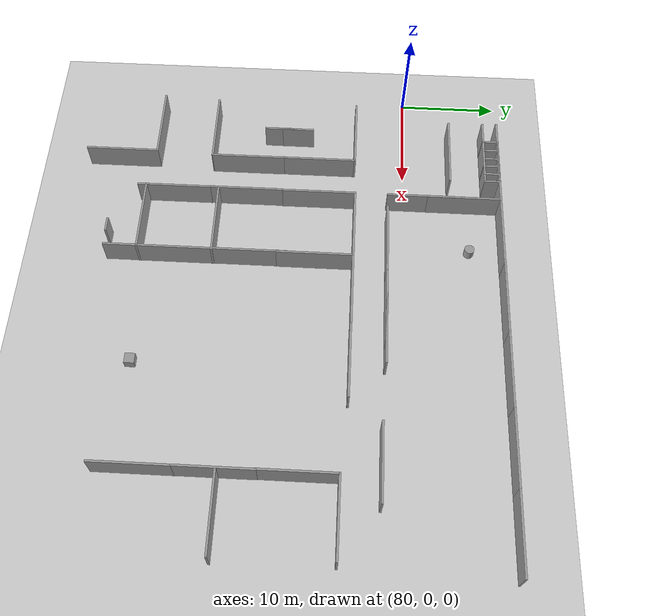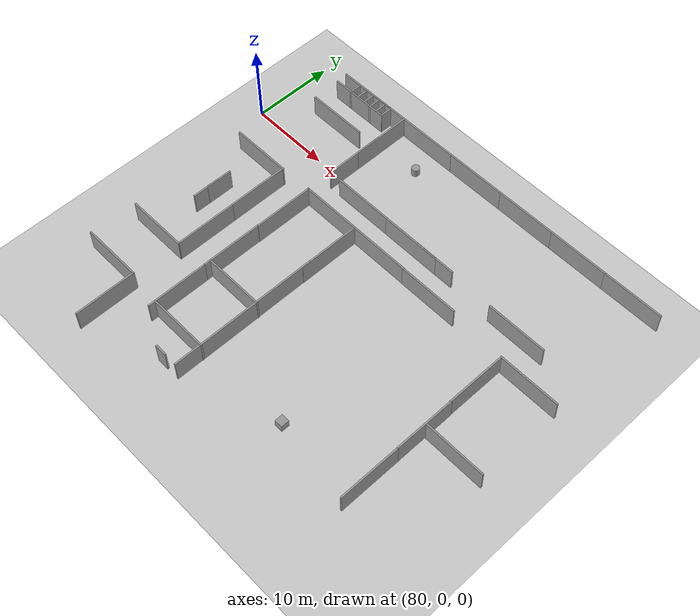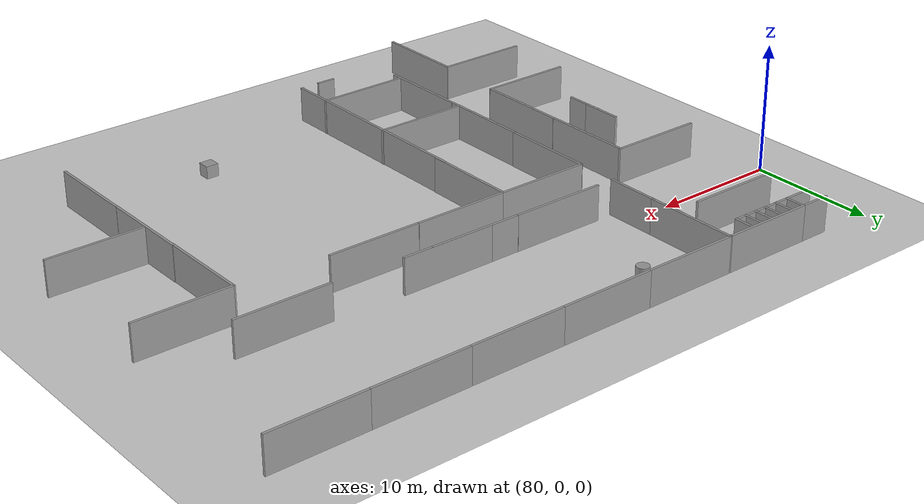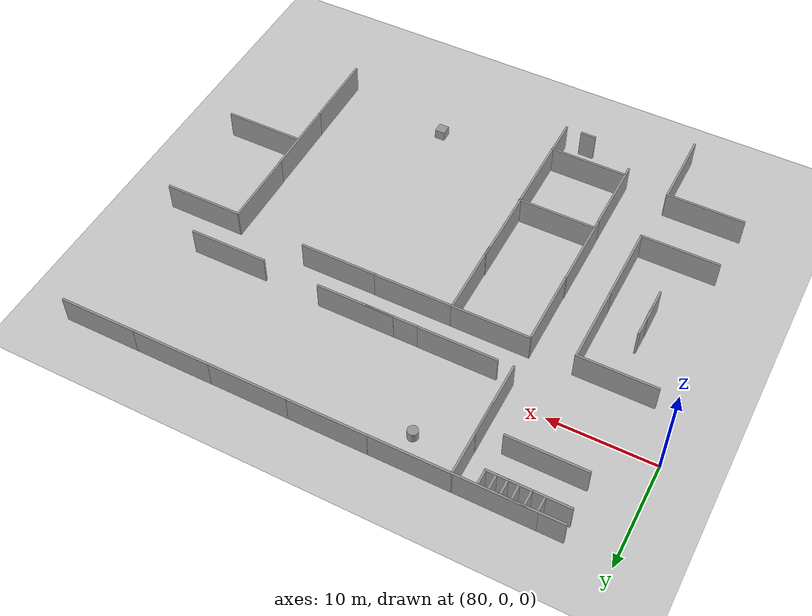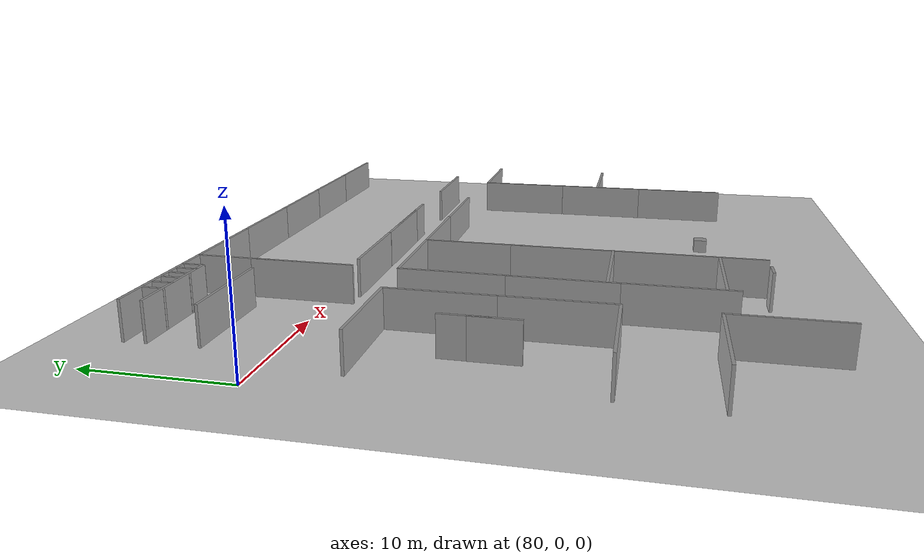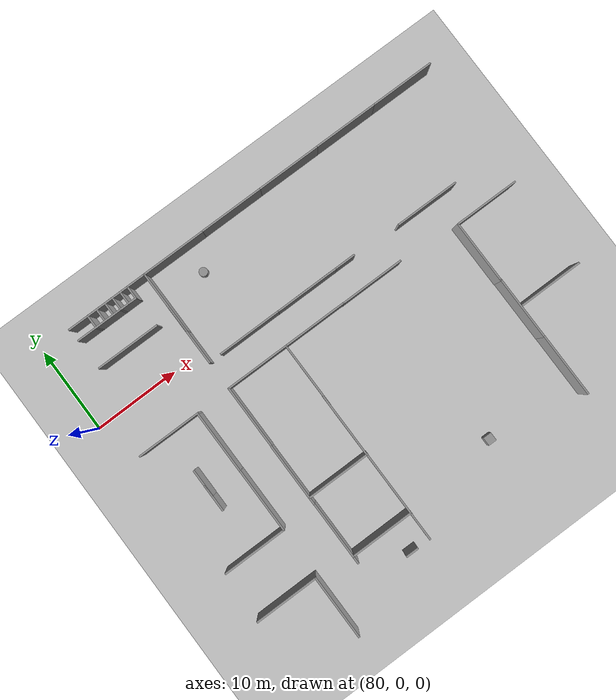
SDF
<sdf version="1.7">
 <world name="default">
  <model name="ground_plane">
   <static>1</static>
   <link name="link">
    <collision name="collision">
     <geometry><plane><normal>0 0 1</normal><size>100 100</size></plane></geometry>
     <surface>
      <contact><collide_bitmask>65535</collide_bitmask></contact>
      <friction><ode><mu>100</mu><mu2>50</mu2></ode></friction>
     </surface>
    </collision>
    <visual name="visual">
     <cast_shadows>0</cast_shadows>
     <geometry><plane><normal>0 0 1</normal><size>100 100</size></plane></geometry>
     <material>
      <script><uri>file://media/materials/scripts/gazebo.material</uri><name>Gazebo/Grey</name></script>
     </material>
    </visual>
   </link>
  </model>
  <model name="grey_wall_clone_1_clone_2_clone_clone_clone_clone_clone_clone_clone_clone_clone_3_clone_1">
   <static>1</static>
   <link name="link">
    <pose>0 0 1.4 0 -0 0</pose>
    <collision name="collision"><geometry><box><size>7.5 0.2 2.8</size></box></geometry></collision>
    <visual name="visual">
     <cast_shadows>0</cast_shadows>
     <geometry><box><size>7.5 0.2 2.8</size></box></geometry>
     <material>
      <script>
       <uri>model://grey_wall/materials/scripts</uri>
       <uri>model://grey_wall/materials/textures</uri>
       <name>vrc/grey_wall</name>
      </script>
     </material>
    </visual>
   </link>
   <pose>86.0719 -5.1517 0 0 -0 0</pose>
  </model>
  <model name="grey_wall_clone_2_clone_clone_clone_1_clone_clone_0_clone_1_clone_clone_clone_1_clone_0">
   <static>1</static>
   <link name="link">
    <pose>0 0 1.4 0 -0 0</pose>
    <collision name="collision"><geometry><box><size>7.5 0.2 2.8</size></box></geometry></collision>
    <visual name="visual">
     <cast_shadows>0</cast_shadows>
     <geometry><box><size>7.5 0.2 2.8</size></box></geometry>
     <material>
      <script>
       <uri>model://grey_wall/materials/scripts</uri>
       <uri>model://grey_wall/materials/textures</uri>
       <name>vrc/grey_wall</name>
      </script>
     </material>
    </visual>
   </link>
   <pose>89.7157 -8.80789 0 0 0 -1.5708</pose>
  </model>
  <model name="grey_wall_clone_2_clone_clone_clone_1_clone_clone_0_clone_1_clone_clone_clone_1_clone_1">
   <static>1</static>
   <link name="link">
    <pose>0 0 1.4 0 -0 0</pose>
    <collision name="collision"><geometry><box><size>7.5 0.2 2.8</size></box></geometry></collision>
    <visual name="visual">
     <cast_shadows>0</cast_shadows>
     <geometry><box><size>7.5 0.2 2.8</size></box></geometry>
     <material>
      <script>
       <uri>model://grey_wall/materials/scripts</uri>
       <uri>model://grey_wall/materials/textures</uri>
       <name>vrc/grey_wall</name>
      </script>
     </material>
    </visual>
   </link>
   <pose>89.7299 -16.2551 0 0 0 -1.5708</pose>
  </model>
  <model name="grey_wall_clone_1_clone_2_clone_clone_clone_clone_clone_clone_clone_clone_clone_3_clone_0_clone">
   <static>1</static>
   <link name="link">
    <pose>0 0 1.4 0 -0 0</pose>
    <collision name="collision"><geometry><box><size>7.5 0.2 2.8</size></box></geometry></collision>
    <visual name="visual">
     <cast_shadows>0</cast_shadows>
     <geometry><box><size>7.5 0.2 2.8</size></box></geometry>
     <material>
      <script>
       <uri>model://grey_wall/materials/scripts</uri>
       <uri>model://grey_wall/materials/textures</uri>
       <name>vrc/grey_wall</name>
      </script>
     </material>
    </visual>
   </link>
   <pose>86.0487 -19.9992 0 0 -0 0</pose>
  </model>
  <model name="fixed_half_clone_16_clone_clone_clone_0_clone_3">
   <link name="link">
    <pose>0 0 1.4 0 -0 0</pose>
    <inertial>
     <mass>1</mass>
     <inertia><ixx>1</ixx><ixy>0</ixy><ixz>0</ixz><iyy>1</iyy><iyz>0</iyz><izz>1</izz></inertia>
    </inertial>
    <visual name="visual">
     <cast_shadows>0</cast_shadows>
     <geometry><box><size>3.3 0.2 2.8</size></box></geometry>
     <material>
      <script>
       <uri>model://grey_wall/materials/scripts</uri>
       <uri>model://grey_wall/materials/textures</uri>
       <name>vrc/grey_wall</name>
      </script>
      <shader type="pixel"><normal_map>__default__</normal_map></shader>
      <ambient>1 1 1 1</ambient>
      <diffuse>1 1 1 1</diffuse>
      <specular>0 0 0 1</specular>
      <emissive>0 0 0 1</emissive>
     </material>
    </visual>
    <collision name="collision">
     <geometry><box><size>3.3 0.2 2.8</size></box></geometry>
     <surface>
      <friction>
       <ode><mu>1</mu><mu2>1</mu2><fdir1>0 0 0</fdir1><slip1>0</slip1><slip2>0</slip2></ode>
       <torsional>
        <coefficient>1</coefficient>
        <patch_radius>0</patch_radius>
        <surface_radius>0</surface_radius>
        <use_patch_radius>1</use_patch_radius>
        <ode><slip>0</slip></ode>
       </torsional>
      </friction>
      <bounce><restitution_coefficient>0</restitution_coefficient><threshold>1e+06</threshold></bounce>
      <contact>
       <collide_without_contact>0</collide_without_contact>
       <collide_without_contact_bitmask>1</collide_without_contact_bitmask>
       <collide_bitmask>1</collide_bitmask>
       <ode>
        <soft_cfm>0</soft_cfm>
        <soft_erp>0.2</soft_erp>
        <kp>1e+13</kp>
        <kd>1</kd>
        <max_vel>0.01</max_vel>
        <min_depth>0</min_depth>
       </ode>
       <bullet>
        <split_impulse>1</split_impulse>
        <split_impulse_penetration_threshold>-0.01</split_impulse_penetration_threshold>
        <soft_cfm>0</soft_cfm>
        <soft_erp>0.2</soft_erp>
        <kp>1e+13</kp>
        <kd>1</kd>
       </bullet>
      </contact>
     </surface>
    </collision>
   </link>
   <static>1</static>
   <pose>85.9377 -11.2515 0 0 0 -1.5708</pose>
  </model>
  <model name="fixed_half_clone_16_clone_clone_clone_0_clone_4">
   <link name="link">
    <pose>0 0 1.4 0 -0 0</pose>
    <inertial>
     <mass>1</mass>
     <inertia><ixx>1</ixx><ixy>0</ixy><ixz>0</ixz><iyy>1</iyy><iyz>0</iyz><izz>1</izz></inertia>
    </inertial>
    <visual name="visual">
     <cast_shadows>0</cast_shadows>
     <geometry><box><size>3.3 0.2 2.8</size></box></geometry>
     <material>
      <script>
       <uri>model://grey_wall/materials/scripts</uri>
       <uri>model://grey_wall/materials/textures</uri>
       <name>vrc/grey_wall</name>
      </script>
      <shader type="pixel"><normal_map>__default__</normal_map></shader>
      <ambient>1 1 1 1</ambient>
      <diffuse>1 1 1 1</diffuse>
      <specular>0 0 0 1</specular>
      <emissive>0 0 0 1</emissive>
     </material>
    </visual>
    <collision name="collision">
     <geometry><box><size>3.3 0.2 2.8</size></box></geometry>
     <surface>
      <friction>
       <ode><mu>1</mu><mu2>1</mu2><fdir1>0 0 0</fdir1><slip1>0</slip1><slip2>0</slip2></ode>
       <torsional>
        <coefficient>1</coefficient>
        <patch_radius>0</patch_radius>
        <surface_radius>0</surface_radius>
        <use_patch_radius>1</use_patch_radius>
        <ode><slip>0</slip></ode>
       </torsional>
      </friction>
      <bounce><restitution_coefficient>0</restitution_coefficient><threshold>1e+06</threshold></bounce>
      <contact>
       <collide_without_contact>0</collide_without_contact>
       <collide_without_contact_bitmask>1</collide_without_contact_bitmask>
       <collide_bitmask>1</collide_bitmask>
       <ode>
        <soft_cfm>0</soft_cfm>
        <soft_erp>0.2</soft_erp>
        <kp>1e+13</kp>
        <kd>1</kd>
        <max_vel>0.01</max_vel>
        <min_depth>0</min_depth>
       </ode>
       <bullet>
        <split_impulse>1</split_impulse>
        <split_impulse_penetration_threshold>-0.01</split_impulse_penetration_threshold>
        <soft_cfm>0</soft_cfm>
        <soft_erp>0.2</soft_erp>
        <kp>1e+13</kp>
        <kd>1</kd>
       </bullet>
      </contact>
     </surface>
    </collision>
   </link>
   <static>1</static>
   <pose>85.9227 -13.0879 0 0 0 -1.5708</pose>
  </model>
  <model name="grey_wall_clone_1_clone_2_clone_clone_clone_clone_clone_clone_clone_clone_clone_3_clone_0_clone_1_clone_1">
   <static>1</static>
   <link name="link">
    <pose>0 0 1.4 0 -0 0</pose>
    <collision name="collision"><geometry><box><size>7.5 0.2 2.8</size></box></geometry></collision>
    <visual name="visual">
     <cast_shadows>0</cast_shadows>
     <geometry><box><size>7.5 0.2 2.8</size></box></geometry>
     <material>
      <script>
       <uri>model://grey_wall/materials/scripts</uri>
       <uri>model://grey_wall/materials/textures</uri>
       <name>vrc/grey_wall</name>
      </script>
     </material>
    </visual>
   </link>
   <pose>85.7534 -25.8356 0 0 -0 0</pose>
  </model>
  <model name="grey_wall_clone_2_clone_clone_clone_1_clone_clone_0_clone_1_clone_clone_clone_1_clone_1_clone">
   <static>1</static>
   <link name="link">
    <pose>0 0 1.4 0 -0 0</pose>
    <collision name="collision"><geometry><box><size>7.5 0.2 2.8</size></box></geometry></collision>
    <visual name="visual">
     <cast_shadows>0</cast_shadows>
     <geometry><box><size>7.5 0.2 2.8</size></box></geometry>
     <material>
      <script>
       <uri>model://grey_wall/materials/scripts</uri>
       <uri>model://grey_wall/materials/textures</uri>
       <name>vrc/grey_wall</name>
      </script>
     </material>
    </visual>
   </link>
   <pose>89.4363 -29.4887 0 0 0 -1.5708</pose>
  </model>
  <model name="grey_wall_clone_2_clone_clone_clone_1_clone_clone_0_clone_1_clone_clone_clone_1_clone_0_clone_1">
   <static>1</static>
   <link name="link">
    <pose>0 0 1.4 0 -0 0</pose>
    <collision name="collision"><geometry><box><size>7.5 0.2 2.8</size></box></geometry></collision>
    <visual name="visual">
     <cast_shadows>0</cast_shadows>
     <geometry><box><size>7.5 0.2 2.8</size></box></geometry>
     <material>
      <script>
       <uri>model://grey_wall/materials/scripts</uri>
       <uri>model://grey_wall/materials/textures</uri>
       <name>vrc/grey_wall</name>
      </script>
     </material>
    </visual>
   </link>
   <pose>93.8471 6.09525 0 0 0 -1.5708</pose>
  </model>
  <model name="grey_wall_clone_1_clone_2_clone_clone_clone_clone_clone_clone_clone_3_clone_0_clone">
   <static>1</static>
   <link name="link">
    <pose>0 0 1.4 0 -0 0</pose>
    <collision name="collision"><geometry><box><size>7.5 0.2 2.8</size></box></geometry></collision>
    <visual name="visual">
     <cast_shadows>0</cast_shadows>
     <geometry><box><size>7.5 0.2 2.8</size></box></geometry>
     <material>
      <script>
       <uri>model://grey_wall/materials/scripts</uri>
       <uri>model://grey_wall/materials/textures</uri>
       <name>vrc/grey_wall</name>
      </script>
     </material>
    </visual>
   </link>
   <pose>87.888 9.74014 0 0 -0 0</pose>
  </model>
  <model name="grey_wall_clone_1_clone_2_clone_clone_clone_clone_clone_clone_clone_3_clone_0_clone_0">
   <static>1</static>
   <link name="link">
    <pose>0 0 1.4 0 -0 0</pose>
    <collision name="collision"><geometry><box><size>7.5 0.2 2.8</size></box></geometry></collision>
    <visual name="visual">
     <cast_shadows>0</cast_shadows>
     <geometry><box><size>7.5 0.2 2.8</size></box></geometry>
     <material>
      <script>
       <uri>model://grey_wall/materials/scripts</uri>
       <uri>model://grey_wall/materials/textures</uri>
       <name>vrc/grey_wall</name>
      </script>
     </material>
    </visual>
   </link>
   <pose>90.2192 9.74402 0 0 -0 0</pose>
  </model>
  <model name="grey_wall_clone_2_clone_clone_clone_1_clone_clone_0_clone_1_clone_clone_clone_1_clone_0_clone_1_clone">
   <static>1</static>
   <link name="link">
    <pose>0 0 1.4 0 -0 0</pose>
    <collision name="collision"><geometry><box><size>7.5 0.2 2.8</size></box></geometry></collision>
    <visual name="visual">
     <cast_shadows>0</cast_shadows>
     <geometry><box><size>7.5 0.2 2.8</size></box></geometry>
     <material>
      <script>
       <uri>model://grey_wall/materials/scripts</uri>
       <uri>model://grey_wall/materials/textures</uri>
       <name>vrc/grey_wall</name>
      </script>
     </material>
    </visual>
   </link>
   <pose>93.8338 1.98446 0 0 0 -1.5708</pose>
  </model>
  <model name="grey_wall_clone_1_clone_2_clone_clone_clone_clone_clone_clone_clone_clone_clone_3_clone_1_clone">
   <static>1</static>
   <link name="link">
    <pose>0 0 1.4 0 -0 0</pose>
    <collision name="collision"><geometry><box><size>7.5 0.2 2.8</size></box></geometry></collision>
    <visual name="visual">
     <cast_shadows>0</cast_shadows>
     <geometry><box><size>7.5 0.2 2.8</size></box></geometry>
     <material>
      <script>
       <uri>model://grey_wall/materials/scripts</uri>
       <uri>model://grey_wall/materials/textures</uri>
       <name>vrc/grey_wall</name>
      </script>
     </material>
    </visual>
   </link>
   <pose>88.0341 4.67665 0 0 -0 0</pose>
  </model>
  <model name="grey_wall_clone_1_clone_2_clone_clone_clone_clone_clone_clone_clone_clone_clone_3_clone_1_clone_0">
   <static>1</static>
   <link name="link">
    <pose>0 0 1.4 0 -0 0</pose>
    <collision name="collision"><geometry><box><size>7.5 0.2 2.8</size></box></geometry></collision>
    <visual name="visual">
     <cast_shadows>0</cast_shadows>
     <geometry><box><size>7.5 0.2 2.8</size></box></geometry>
     <material>
      <script>
       <uri>model://grey_wall/materials/scripts</uri>
       <uri>model://grey_wall/materials/textures</uri>
       <name>vrc/grey_wall</name>
      </script>
     </material>
    </visual>
   </link>
   <pose>87.9911 8.26196 0 0 -0 0</pose>
  </model>
  <model name="half_wall_clone_0_clone_clone_clone_9_clone_3">
   <link name="link">
    <pose>0 0 1.4 0 -0 0</pose>
    <inertial>
     <mass>1</mass>
     <inertia><ixx>1</ixx><ixy>0</ixy><ixz>0</ixz><iyy>1</iyy><iyz>0</iyz><izz>1</izz></inertia>
    </inertial>
    <visual name="visual">
     <cast_shadows>0</cast_shadows>
     <geometry><box><size>1.5 0.2 2.8</size></box></geometry>
     <material>
      <script>
       <uri>model://grey_wall/materials/scripts</uri>
       <uri>model://grey_wall/materials/textures</uri>
       <name>vrc/grey_wall</name>
      </script>
      <shader type="pixel"><normal_map>__default__</normal_map></shader>
      <ambient>1 1 1 1</ambient>
      <diffuse>1 1 1 1</diffuse>
      <specular>0 0 0 1</specular>
      <emissive>0 0 0 1</emissive>
     </material>
    </visual>
    <collision name="collision">
     <geometry><box><size>1.5 0.2 2.8</size></box></geometry>
     <surface>
      <friction>
       <ode><mu>1</mu><mu2>1</mu2><fdir1>0 0 0</fdir1><slip1>0</slip1><slip2>0</slip2></ode>
       <torsional>
        <coefficient>1</coefficient>
        <patch_radius>0</patch_radius>
        <surface_radius>0</surface_radius>
        <use_patch_radius>1</use_patch_radius>
        <ode><slip>0</slip></ode>
       </torsional>
      </friction>
      <bounce><restitution_coefficient>0</restitution_coefficient><threshold>1e+06</threshold></bounce>
      <contact>
       <collide_without_contact>0</collide_without_contact>
       <collide_without_contact_bitmask>1</collide_without_contact_bitmask>
       <collide_bitmask>1</collide_bitmask>
       <ode>
        <soft_cfm>0</soft_cfm>
        <soft_erp>0.2</soft_erp>
        <kp>1e+13</kp>
        <kd>1</kd>
        <max_vel>0.01</max_vel>
        <min_depth>0</min_depth>
       </ode>
       <bullet>
        <split_impulse>1</split_impulse>
        <split_impulse_penetration_threshold>-0.01</split_impulse_penetration_threshold>
        <soft_cfm>0</soft_cfm>
        <soft_erp>0.2</soft_erp>
        <kp>1e+13</kp>
        <kd>1</kd>
       </bullet>
      </contact>
     </surface>
    </collision>
   </link>
   <static>1</static>
   <pose>90.7353 8.94878 0 0 0 -1.5708</pose>
  </model>
  <model name="half_wall_clone_0_clone_clone_clone_9_clone_4">
   <link name="link">
    <pose>0 0 1.4 0 -0 0</pose>
    <inertial>
     <mass>1</mass>
     <inertia><ixx>1</ixx><ixy>0</ixy><ixz>0</ixz><iyy>1</iyy><iyz>0</iyz><izz>1</izz></inertia>
    </inertial>
    <visual name="visual">
     <cast_shadows>0</cast_shadows>
     <geometry><box><size>1.5 0.2 2.8</size></box></geometry>
     <material>
      <script>
       <uri>model://grey_wall/materials/scripts</uri>
       <uri>model://grey_wall/materials/textures</uri>
       <name>vrc/grey_wall</name>
      </script>
      <shader type="pixel"><normal_map>__default__</normal_map></shader>
      <ambient>1 1 1 1</ambient>
      <diffuse>1 1 1 1</diffuse>
      <specular>0 0 0 1</specular>
      <emissive>0 0 0 1</emissive>
     </material>
    </visual>
    <collision name="collision">
     <geometry><box><size>1.5 0.2 2.8</size></box></geometry>
     <surface>
      <friction>
       <ode><mu>1</mu><mu2>1</mu2><fdir1>0 0 0</fdir1><slip1>0</slip1><slip2>0</slip2></ode>
       <torsional>
        <coefficient>1</coefficient>
        <patch_radius>0</patch_radius>
        <surface_radius>0</surface_radius>
        <use_patch_radius>1</use_patch_radius>
        <ode><slip>0</slip></ode>
       </torsional>
      </friction>
      <bounce><restitution_coefficient>0</restitution_coefficient><threshold>1e+06</threshold></bounce>
      <contact>
       <collide_without_contact>0</collide_without_contact>
       <collide_without_contact_bitmask>1</collide_without_contact_bitmask>
       <collide_bitmask>1</collide_bitmask>
       <ode>
        <soft_cfm>0</soft_cfm>
        <soft_erp>0.2</soft_erp>
        <kp>1e+13</kp>
        <kd>1</kd>
        <max_vel>0.01</max_vel>
        <min_depth>0</min_depth>
       </ode>
       <bullet>
        <split_impulse>1</split_impulse>
        <split_impulse_penetration_threshold>-0.01</split_impulse_penetration_threshold>
        <soft_cfm>0</soft_cfm>
        <soft_erp>0.2</soft_erp>
        <kp>1e+13</kp>
        <kd>1</kd>
       </bullet>
      </contact>
     </surface>
    </collision>
   </link>
   <static>1</static>
   <pose>89.7411 8.90187 0 0 0 -1.5708</pose>
  </model>
  <model name="half_wall_clone_0_clone_clone_clone_9_clone_5">
   <link name="link">
    <pose>0 0 1.4 0 -0 0</pose>
    <inertial>
     <mass>1</mass>
     <inertia><ixx>1</ixx><ixy>0</ixy><ixz>0</ixz><iyy>1</iyy><iyz>0</iyz><izz>1</izz></inertia>
    </inertial>
    <visual name="visual">
     <cast_shadows>0</cast_shadows>
     <geometry><box><size>1.5 0.2 2.8</size></box></geometry>
     <material>
      <script>
       <uri>model://grey_wall/materials/scripts</uri>
       <uri>model://grey_wall/materials/textures</uri>
       <name>vrc/grey_wall</name>
      </script>
      <shader type="pixel"><normal_map>__default__</normal_map></shader>
      <ambient>1 1 1 1</ambient>
      <diffuse>1 1 1 1</diffuse>
      <specular>0 0 0 1</specular>
      <emissive>0 0 0 1</emissive>
     </material>
    </visual>
    <collision name="collision">
     <geometry><box><size>1.5 0.2 2.8</size></box></geometry>
     <surface>
      <friction>
       <ode><mu>1</mu><mu2>1</mu2><fdir1>0 0 0</fdir1><slip1>0</slip1><slip2>0</slip2></ode>
       <torsional>
        <coefficient>1</coefficient>
        <patch_radius>0</patch_radius>
        <surface_radius>0</surface_radius>
        <use_patch_radius>1</use_patch_radius>
        <ode><slip>0</slip></ode>
       </torsional>
      </friction>
      <bounce><restitution_coefficient>0</restitution_coefficient><threshold>1e+06</threshold></bounce>
      <contact>
       <collide_without_contact>0</collide_without_contact>
       <collide_without_contact_bitmask>1</collide_without_contact_bitmask>
       <collide_bitmask>1</collide_bitmask>
       <ode>
        <soft_cfm>0</soft_cfm>
        <soft_erp>0.2</soft_erp>
        <kp>1e+13</kp>
        <kd>1</kd>
        <max_vel>0.01</max_vel>
        <min_depth>0</min_depth>
       </ode>
       <bullet>
        <split_impulse>1</split_impulse>
        <split_impulse_penetration_threshold>-0.01</split_impulse_penetration_threshold>
        <soft_cfm>0</soft_cfm>
        <soft_erp>0.2</soft_erp>
        <kp>1e+13</kp>
        <kd>1</kd>
       </bullet>
      </contact>
     </surface>
    </collision>
   </link>
   <static>1</static>
   <pose>88.7925 8.92844 0 0 0 -1.5708</pose>
  </model>
  <model name="half_wall_clone_0_clone_clone_clone_9_clone_6">
   <link name="link">
    <pose>0 0 1.4 0 -0 0</pose>
    <inertial>
     <mass>1</mass>
     <inertia><ixx>1</ixx><ixy>0</ixy><ixz>0</ixz><iyy>1</iyy><iyz>0</iyz><izz>1</izz></inertia>
    </inertial>
    <visual name="visual">
     <cast_shadows>0</cast_shadows>
     <geometry><box><size>1.5 0.2 2.8</size></box></geometry>
     <material>
      <script>
       <uri>model://grey_wall/materials/scripts</uri>
       <uri>model://grey_wall/materials/textures</uri>
       <name>vrc/grey_wall</name>
      </script>
      <shader type="pixel"><normal_map>__default__</normal_map></shader>
      <ambient>1 1 1 1</ambient>
      <diffuse>1 1 1 1</diffuse>
      <specular>0 0 0 1</specular>
      <emissive>0 0 0 1</emissive>
     </material>
    </visual>
    <collision name="collision">
     <geometry><box><size>1.5 0.2 2.8</size></box></geometry>
     <surface>
      <friction>
       <ode><mu>1</mu><mu2>1</mu2><fdir1>0 0 0</fdir1><slip1>0</slip1><slip2>0</slip2></ode>
       <torsional>
        <coefficient>1</coefficient>
        <patch_radius>0</patch_radius>
        <surface_radius>0</surface_radius>
        <use_patch_radius>1</use_patch_radius>
        <ode><slip>0</slip></ode>
       </torsional>
      </friction>
      <bounce><restitution_coefficient>0</restitution_coefficient><threshold>1e+06</threshold></bounce>
      <contact>
       <collide_without_contact>0</collide_without_contact>
       <collide_without_contact_bitmask>1</collide_without_contact_bitmask>
       <collide_bitmask>1</collide_bitmask>
       <ode>
        <soft_cfm>0</soft_cfm>
        <soft_erp>0.2</soft_erp>
        <kp>1e+13</kp>
        <kd>1</kd>
        <max_vel>0.01</max_vel>
        <min_depth>0</min_depth>
       </ode>
       <bullet>
        <split_impulse>1</split_impulse>
        <split_impulse_penetration_threshold>-0.01</split_impulse_penetration_threshold>
        <soft_cfm>0</soft_cfm>
        <soft_erp>0.2</soft_erp>
        <kp>1e+13</kp>
        <kd>1</kd>
       </bullet>
      </contact>
     </surface>
    </collision>
   </link>
   <static>1</static>
   <pose>87.7152 8.92858 0 0 0 -1.5708</pose>
  </model>
  <model name="half_wall_clone_0_clone_clone_clone_9_clone_7">
   <link name="link">
    <pose>0 0 1.4 0 -0 0</pose>
    <inertial>
     <mass>1</mass>
     <inertia><ixx>1</ixx><ixy>0</ixy><ixz>0</ixz><iyy>1</iyy><iyz>0</iyz><izz>1</izz></inertia>
    </inertial>
    <visual name="visual">
     <cast_shadows>0</cast_shadows>
     <geometry><box><size>1.5 0.2 2.8</size></box></geometry>
     <material>
      <script>
       <uri>model://grey_wall/materials/scripts</uri>
       <uri>model://grey_wall/materials/textures</uri>
       <name>vrc/grey_wall</name>
      </script>
      <shader type="pixel"><normal_map>__default__</normal_map></shader>
      <ambient>1 1 1 1</ambient>
      <diffuse>1 1 1 1</diffuse>
      <specular>0 0 0 1</specular>
      <emissive>0 0 0 1</emissive>
     </material>
    </visual>
    <collision name="collision">
     <geometry><box><size>1.5 0.2 2.8</size></box></geometry>
     <surface>
      <friction>
       <ode><mu>1</mu><mu2>1</mu2><fdir1>0 0 0</fdir1><slip1>0</slip1><slip2>0</slip2></ode>
       <torsional>
        <coefficient>1</coefficient>
        <patch_radius>0</patch_radius>
        <surface_radius>0</surface_radius>
        <use_patch_radius>1</use_patch_radius>
        <ode><slip>0</slip></ode>
       </torsional>
      </friction>
      <bounce><restitution_coefficient>0</restitution_coefficient><threshold>1e+06</threshold></bounce>
      <contact>
       <collide_without_contact>0</collide_without_contact>
       <collide_without_contact_bitmask>1</collide_without_contact_bitmask>
       <collide_bitmask>1</collide_bitmask>
       <ode>
        <soft_cfm>0</soft_cfm>
        <soft_erp>0.2</soft_erp>
        <kp>1e+13</kp>
        <kd>1</kd>
        <max_vel>0.01</max_vel>
        <min_depth>0</min_depth>
       </ode>
       <bullet>
        <split_impulse>1</split_impulse>
        <split_impulse_penetration_threshold>-0.01</split_impulse_penetration_threshold>
        <soft_cfm>0</soft_cfm>
        <soft_erp>0.2</soft_erp>
        <kp>1e+13</kp>
        <kd>1</kd>
       </bullet>
      </contact>
     </surface>
    </collision>
   </link>
   <static>1</static>
   <pose>86.5825 8.90991 0 0 0 -1.5708</pose>
  </model>
  <model name="half_wall_clone_0_clone_clone_clone_9_clone_9">
   <link name="link">
    <pose>0 0 1.4 0 -0 0</pose>
    <inertial>
     <mass>1</mass>
     <inertia><ixx>1</ixx><ixy>0</ixy><ixz>0</ixz><iyy>1</iyy><iyz>0</iyz><izz>1</izz></inertia>
    </inertial>
    <visual name="visual">
     <cast_shadows>0</cast_shadows>
     <geometry><box><size>1.5 0.2 2.8</size></box></geometry>
     <material>
      <script>
       <uri>model://grey_wall/materials/scripts</uri>
       <uri>model://grey_wall/materials/textures</uri>
       <name>vrc/grey_wall</name>
      </script>
      <shader type="pixel"><normal_map>__default__</normal_map></shader>
      <ambient>1 1 1 1</ambient>
      <diffuse>1 1 1 1</diffuse>
      <specular>0 0 0 1</specular>
      <emissive>0 0 0 1</emissive>
     </material>
    </visual>
    <collision name="collision">
     <geometry><box><size>1.5 0.2 2.8</size></box></geometry>
     <surface>
      <friction>
       <ode><mu>1</mu><mu2>1</mu2><fdir1>0 0 0</fdir1><slip1>0</slip1><slip2>0</slip2></ode>
       <torsional>
        <coefficient>1</coefficient>
        <patch_radius>0</patch_radius>
        <surface_radius>0</surface_radius>
        <use_patch_radius>1</use_patch_radius>
        <ode><slip>0</slip></ode>
       </torsional>
      </friction>
      <bounce><restitution_coefficient>0</restitution_coefficient><threshold>1e+06</threshold></bounce>
      <contact>
       <collide_without_contact>0</collide_without_contact>
       <collide_without_contact_bitmask>1</collide_without_contact_bitmask>
       <collide_bitmask>1</collide_bitmask>
       <ode>
        <soft_cfm>0</soft_cfm>
        <soft_erp>0.2</soft_erp>
        <kp>1e+13</kp>
        <kd>1</kd>
        <max_vel>0.01</max_vel>
        <min_depth>0</min_depth>
       </ode>
       <bullet>
        <split_impulse>1</split_impulse>
        <split_impulse_penetration_threshold>-0.01</split_impulse_penetration_threshold>
        <soft_cfm>0</soft_cfm>
        <soft_erp>0.2</soft_erp>
        <kp>1e+13</kp>
        <kd>1</kd>
       </bullet>
      </contact>
     </surface>
    </collision>
   </link>
   <static>1</static>
   <pose>91.6662 8.92306 0 0 0 -1.5708</pose>
  </model>
  <model name="grey_wall_clone_2_clone_clone_clone_1_clone_clone_0_clone_1_clone_clone_clone_1_clone_0_clone_2">
   <static>1</static>
   <link name="link">
    <pose>0 0 1.4 0 -0 0</pose>
    <collision name="collision"><geometry><box><size>7.5 0.2 2.8</size></box></geometry></collision>
    <visual name="visual">
     <cast_shadows>0</cast_shadows>
     <geometry><box><size>7.5 0.2 2.8</size></box></geometry>
     <material>
      <script>
       <uri>model://grey_wall/materials/scripts</uri>
       <uri>model://grey_wall/materials/textures</uri>
       <name>vrc/grey_wall</name>
      </script>
     </material>
    </visual>
   </link>
   <pose>93.8207 -8.67642 0 0 0 -1.5708</pose>
  </model>
  <model name="grey_wall_clone_2_clone_clone_clone_1_clone_clone_0_clone_1_clone_clone_clone_1_clone_0_clone_2_clone">
   <static>1</static>
   <link name="link">
    <pose>0 0 1.4 0 -0 0</pose>
    <collision name="collision"><geometry><box><size>7.5 0.2 2.8</size></box></geometry></collision>
    <visual name="visual">
     <cast_shadows>0</cast_shadows>
     <geometry><box><size>7.5 0.2 2.8</size></box></geometry>
     <material>
      <script>
       <uri>model://grey_wall/materials/scripts</uri>
       <uri>model://grey_wall/materials/textures</uri>
       <name>vrc/grey_wall</name>
      </script>
     </material>
    </visual>
   </link>
   <pose>93.7879 -16.0817 0 0 0 -1.5708</pose>
  </model>
  <model name="grey_wall_clone_2_clone_clone_clone_1_clone_clone_0_clone_1_clone_clone_clone_1_clone_0_clone_2_clone_0">
   <static>1</static>
   <link name="link">
    <pose>0 0 1.4 0 -0 0</pose>
    <collision name="collision"><geometry><box><size>7.5 0.2 2.8</size></box></geometry></collision>
    <visual name="visual">
     <cast_shadows>0</cast_shadows>
     <geometry><box><size>7.5 0.2 2.8</size></box></geometry>
     <material>
      <script>
       <uri>model://grey_wall/materials/scripts</uri>
       <uri>model://grey_wall/materials/textures</uri>
       <name>vrc/grey_wall</name>
      </script>
     </material>
    </visual>
   </link>
   <pose>93.8061 -23.5426 0 0 0 -1.5708</pose>
  </model>
  <model name="grey_wall_clone_1_clone_2_clone_clone_clone_clone_clone_clone_clone_clone_clone_3_clone_1_clone_1">
   <static>1</static>
   <link name="link">
    <pose>0 0 1.4 0 -0 0</pose>
    <collision name="collision"><geometry><box><size>7.5 0.2 2.8</size></box></geometry></collision>
    <visual name="visual">
     <cast_shadows>0</cast_shadows>
     <geometry><box><size>7.5 0.2 2.8</size></box></geometry>
     <material>
      <script>
       <uri>model://grey_wall/materials/scripts</uri>
       <uri>model://grey_wall/materials/textures</uri>
       <name>vrc/grey_wall</name>
      </script>
     </material>
    </visual>
   </link>
   <pose>97.5163 -5.02175 0 0 -0 0</pose>
  </model>
  <model name="grey_wall_clone_1_clone_2_clone_clone_clone_clone_clone_clone_clone_clone_clone_3_clone_1_clone_2">
   <static>1</static>
   <link name="link">
    <pose>0 0 1.4 0 -0 0</pose>
    <collision name="collision"><geometry><box><size>7.5 0.2 2.8</size></box></geometry></collision>
    <visual name="visual">
     <cast_shadows>0</cast_shadows>
     <geometry><box><size>7.5 0.2 2.8</size></box></geometry>
     <material>
      <script>
       <uri>model://grey_wall/materials/scripts</uri>
       <uri>model://grey_wall/materials/textures</uri>
       <name>vrc/grey_wall</name>
      </script>
     </material>
    </visual>
   </link>
   <pose>97.5524 -18.965 0 0 -0 0</pose>
  </model>
  <model name="grey_wall_clone_2_clone_clone_clone_1_clone_clone_0_clone_1_clone_clone_clone_1_clone_1_clone_0">
   <static>1</static>
   <link name="link">
    <pose>0 0 1.4 0 -0 0</pose>
    <collision name="collision"><geometry><box><size>7.5 0.2 2.8</size></box></geometry></collision>
    <visual name="visual">
     <cast_shadows>0</cast_shadows>
     <geometry><box><size>7.5 0.2 2.8</size></box></geometry>
     <material>
      <script>
       <uri>model://grey_wall/materials/scripts</uri>
       <uri>model://grey_wall/materials/textures</uri>
       <name>vrc/grey_wall</name>
      </script>
     </material>
    </visual>
   </link>
   <pose>101.18 -8.86658 0 0 0 -1.5708</pose>
  </model>
  <model name="grey_wall_clone_2_clone_clone_clone_1_clone_clone_0_clone_1_clone_clone_clone_1_clone_1_clone_1">
   <static>1</static>
   <link name="link">
    <pose>0 0 1.4 0 -0 0</pose>
    <collision name="collision"><geometry><box><size>7.5 0.2 2.8</size></box></geometry></collision>
    <visual name="visual">
     <cast_shadows>0</cast_shadows>
     <geometry><box><size>7.5 0.2 2.8</size></box></geometry>
     <material>
      <script>
       <uri>model://grey_wall/materials/scripts</uri>
       <uri>model://grey_wall/materials/textures</uri>
       <name>vrc/grey_wall</name>
      </script>
     </material>
    </visual>
   </link>
   <pose>101.145 -15.2431 0 0 0 -1.5708</pose>
  </model>
  <model name="grey_wall_clone_2_clone_clone_clone_1_clone_clone_0_clone_1_clone_clone_clone_1_clone_1_clone_2">
   <static>1</static>
   <link name="link">
    <pose>0 0 1.4 0 -0 0</pose>
    <collision name="collision"><geometry><box><size>7.5 0.2 2.8</size></box></geometry></collision>
    <visual name="visual">
     <cast_shadows>0</cast_shadows>
     <geometry><box><size>7.5 0.2 2.8</size></box></geometry>
     <material>
      <script>
       <uri>model://grey_wall/materials/scripts</uri>
       <uri>model://grey_wall/materials/textures</uri>
       <name>vrc/grey_wall</name>
      </script>
     </material>
    </visual>
   </link>
   <pose>101.164 -22.7387 0 0 0 -1.5708</pose>
  </model>
  <model name="grey_wall_clone_1_clone_2_clone_clone_clone_clone_clone_clone_clone_clone_clone_3_clone_0_clone_clone">
   <static>1</static>
   <link name="link">
    <pose>0 0 1.4 0 -0 0</pose>
    <collision name="collision"><geometry><box><size>7.5 0.2 2.8</size></box></geometry></collision>
    <visual name="visual">
     <cast_shadows>0</cast_shadows>
     <geometry><box><size>7.5 0.2 2.8</size></box></geometry>
     <material>
      <script>
       <uri>model://grey_wall/materials/scripts</uri>
       <uri>model://grey_wall/materials/textures</uri>
       <name>vrc/grey_wall</name>
      </script>
     </material>
    </visual>
   </link>
   <pose>97.5315 -26.3842 0 0 -0 0</pose>
  </model>
  <model name="fixed_half_clone_16_clone_clone_clone_0_clone_4_clone_1">
   <link name="link">
    <pose>0 0 1.4 0 -0 0</pose>
    <inertial>
     <mass>1</mass>
     <inertia><ixx>1</ixx><ixy>0</ixy><ixz>0</ixz><iyy>1</iyy><iyz>0</iyz><izz>1</izz></inertia>
    </inertial>
    <visual name="visual">
     <cast_shadows>0</cast_shadows>
     <geometry><box><size>3.3 0.2 2.8</size></box></geometry>
     <material>
      <script>
       <uri>model://grey_wall/materials/scripts</uri>
       <uri>model://grey_wall/materials/textures</uri>
       <name>vrc/grey_wall</name>
      </script>
      <shader type="pixel"><normal_map>__default__</normal_map></shader>
      <ambient>1 1 1 1</ambient>
      <diffuse>1 1 1 1</diffuse>
      <specular>0 0 0 1</specular>
      <emissive>0 0 0 1</emissive>
     </material>
    </visual>
    <collision name="collision">
     <geometry><box><size>3.3 0.2 2.8</size></box></geometry>
     <surface>
      <friction>
       <ode><mu>1</mu><mu2>1</mu2><fdir1>0 0 0</fdir1><slip1>0</slip1><slip2>0</slip2></ode>
       <torsional>
        <coefficient>1</coefficient>
        <patch_radius>0</patch_radius>
        <surface_radius>0</surface_radius>
        <use_patch_radius>1</use_patch_radius>
        <ode><slip>0</slip></ode>
       </torsional>
      </friction>
      <bounce><restitution_coefficient>0</restitution_coefficient><threshold>1e+06</threshold></bounce>
      <contact>
       <collide_without_contact>0</collide_without_contact>
       <collide_without_contact_bitmask>1</collide_without_contact_bitmask>
       <collide_bitmask>1</collide_bitmask>
       <ode>
        <soft_cfm>0</soft_cfm>
        <soft_erp>0.2</soft_erp>
        <kp>1e+13</kp>
        <kd>1</kd>
        <max_vel>0.01</max_vel>
        <min_depth>0</min_depth>
       </ode>
       <bullet>
        <split_impulse>1</split_impulse>
        <split_impulse_penetration_threshold>-0.01</split_impulse_penetration_threshold>
        <soft_cfm>0</soft_cfm>
        <soft_erp>0.2</soft_erp>
        <kp>1e+13</kp>
        <kd>1</kd>
       </bullet>
      </contact>
     </surface>
    </collision>
   </link>
   <static>1</static>
   <pose>101.153 -28.0954 0 0 0 -1.5708</pose>
  </model>
  <model name="half_wall_clone_0_clone_clone_clone_9_clone_1_clone_clone_2">
   <link name="link">
    <pose>0 0 1.4 0 -0 0</pose>
    <inertial>
     <mass>1</mass>
     <inertia><ixx>1</ixx><ixy>0</ixy><ixz>0</ixz><iyy>1</iyy><iyz>0</iyz><izz>1</izz></inertia>
    </inertial>
    <visual name="visual">
     <cast_shadows>0</cast_shadows>
     <geometry><box><size>1.5 0.2 2.8</size></box></geometry>
     <material>
      <script>
       <uri>model://grey_wall/materials/scripts</uri>
       <uri>model://grey_wall/materials/textures</uri>
       <name>vrc/grey_wall</name>
      </script>
      <shader type="pixel"><normal_map>__default__</normal_map></shader>
      <ambient>1 1 1 1</ambient>
      <diffuse>1 1 1 1</diffuse>
      <specular>0 0 0 1</specular>
      <emissive>0 0 0 1</emissive>
     </material>
    </visual>
    <collision name="collision">
     <geometry><box><size>1.5 0.2 2.8</size></box></geometry>
     <surface>
      <friction>
       <ode><mu>1</mu><mu2>1</mu2><fdir1>0 0 0</fdir1><slip1>0</slip1><slip2>0</slip2></ode>
       <torsional>
        <coefficient>1</coefficient>
        <patch_radius>0</patch_radius>
        <surface_radius>0</surface_radius>
        <use_patch_radius>1</use_patch_radius>
        <ode><slip>0</slip></ode>
       </torsional>
      </friction>
      <bounce><restitution_coefficient>0</restitution_coefficient><threshold>1e+06</threshold></bounce>
      <contact>
       <collide_without_contact>0</collide_without_contact>
       <collide_without_contact_bitmask>1</collide_without_contact_bitmask>
       <collide_bitmask>1</collide_bitmask>
       <ode>
        <soft_cfm>0</soft_cfm>
        <soft_erp>0.2</soft_erp>
        <kp>1e+13</kp>
        <kd>1</kd>
        <max_vel>0.01</max_vel>
        <min_depth>0</min_depth>
       </ode>
       <bullet>
        <split_impulse>1</split_impulse>
        <split_impulse_penetration_threshold>-0.01</split_impulse_penetration_threshold>
        <soft_cfm>0</soft_cfm>
        <soft_erp>0.2</soft_erp>
        <kp>1e+13</kp>
        <kd>1</kd>
       </bullet>
      </contact>
     </surface>
    </collision>
   </link>
   <static>1</static>
   <pose>98.877 -29.6778 0 0 -0 3.14159</pose>
  </model>
  <model name="grey_wall_clone_1_clone_2_clone_clone_clone_clone_clone_clone_clone_clone_clone_3_clone_1_clone_1_clone">
   <static>1</static>
   <link name="link">
    <pose>0 0 1.4 0 -0 0</pose>
    <collision name="collision"><geometry><box><size>7.5 0.2 2.8</size></box></geometry></collision>
    <visual name="visual">
     <cast_shadows>0</cast_shadows>
     <geometry><box><size>7.5 0.2 2.8</size></box></geometry>
     <material>
      <script>
       <uri>model://grey_wall/materials/scripts</uri>
       <uri>model://grey_wall/materials/textures</uri>
       <name>vrc/grey_wall</name>
      </script>
     </material>
    </visual>
   </link>
   <pose>104.972 -5.02524 0 0 -0 0</pose>
  </model>
  <model name="grey_wall_clone_2_clone_clone_clone_1_clone_clone_0_clone_1_clone_clone_clone_clone_clone_2_clone_clone_4_clone_1_clone_clone_clone_2">
   <static>1</static>
   <link name="link">
    <pose>0 0 1.4 0 -0 0</pose>
    <collision name="collision"><geometry><box><size>7.5 0.2 2.8</size></box></geometry></collision>
    <visual name="visual">
     <cast_shadows>0</cast_shadows>
     <geometry><box><size>7.5 0.2 2.8</size></box></geometry>
     <material>
      <script>
       <uri>model://grey_wall/materials/scripts</uri>
       <uri>model://grey_wall/materials/textures</uri>
       <name>vrc/grey_wall</name>
      </script>
     </material>
    </visual>
   </link>
   <pose>123.18 -23.9354 0 0 0 -1.5708</pose>
  </model>
  <model name="grey_wall_clone_2_clone_clone_clone_1_clone_clone_0_clone_1_clone_clone_clone_clone_clone_2_clone_clone_4_clone_1_clone_clone_clone_3">
   <static>1</static>
   <link name="link">
    <pose>0 0 1.4 0 -0 0</pose>
    <collision name="collision"><geometry><box><size>7.5 0.2 2.8</size></box></geometry></collision>
    <visual name="visual">
     <cast_shadows>0</cast_shadows>
     <geometry><box><size>7.5 0.2 2.8</size></box></geometry>
     <material>
      <script>
       <uri>model://grey_wall/materials/scripts</uri>
       <uri>model://grey_wall/materials/textures</uri>
       <name>vrc/grey_wall</name>
      </script>
     </material>
    </visual>
   </link>
   <pose>123.167 -16.5415 0 0 0 -1.5708</pose>
  </model>
  <model name="grey_wall_clone_2_clone_clone_clone_1_clone_clone_0_clone_1_clone_clone_clone_clone_clone_2_clone_clone_4_clone_1_clone_clone_clone_3_clone">
   <static>1</static>
   <link name="link">
    <pose>0 0 1.4 0 -0 0</pose>
    <collision name="collision"><geometry><box><size>7.5 0.2 2.8</size></box></geometry></collision>
    <visual name="visual">
     <cast_shadows>0</cast_shadows>
     <geometry><box><size>7.5 0.2 2.8</size></box></geometry>
     <material>
      <script>
       <uri>model://grey_wall/materials/scripts</uri>
       <uri>model://grey_wall/materials/textures</uri>
       <name>vrc/grey_wall</name>
      </script>
     </material>
    </visual>
   </link>
   <pose>123.136 -9.23457 0 0 0 -1.5708</pose>
  </model>
  <model name="grey_wall_clone_1_clone_2_clone_clone_clone_clone_clone_clone_clone_clone_clone_3_clone_1_clone_1_clone_clone">
   <static>1</static>
   <link name="link">
    <pose>0 0 1.4 0 -0 0</pose>
    <collision name="collision"><geometry><box><size>7.5 0.2 2.8</size></box></geometry></collision>
    <visual name="visual">
     <cast_shadows>0</cast_shadows>
     <geometry><box><size>7.5 0.2 2.8</size></box></geometry>
     <material>
      <script>
       <uri>model://grey_wall/materials/scripts</uri>
       <uri>model://grey_wall/materials/textures</uri>
       <name>vrc/grey_wall</name>
      </script>
     </material>
    </visual>
   </link>
   <pose>112.316 -5.04892 0 0 -0 0</pose>
  </model>
  <model name="grey_wall_clone_1_clone_2_clone_clone_clone_clone_clone_clone_clone_3_clone_0_clone_0_clone">
   <static>1</static>
   <link name="link">
    <pose>0 0 1.4 0 -0 0</pose>
    <collision name="collision"><geometry><box><size>7.5 0.2 2.8</size></box></geometry></collision>
    <visual name="visual">
     <cast_shadows>0</cast_shadows>
     <geometry><box><size>7.5 0.2 2.8</size></box></geometry>
     <material>
      <script>
       <uri>model://grey_wall/materials/scripts</uri>
       <uri>model://grey_wall/materials/textures</uri>
       <name>vrc/grey_wall</name>
      </script>
     </material>
    </visual>
   </link>
   <pose>98.9945 -1.66955 0 0 -0 0</pose>
  </model>
  <model name="grey_wall_clone_1_clone_2_clone_clone_clone_clone_clone_clone_clone_3_clone_0_clone_0_clone_0">
   <static>1</static>
   <link name="link">
    <pose>0 0 1.4 0 -0 0</pose>
    <collision name="collision"><geometry><box><size>7.5 0.2 2.8</size></box></geometry></collision>
    <visual name="visual">
     <cast_shadows>0</cast_shadows>
     <geometry><box><size>7.5 0.2 2.8</size></box></geometry>
     <material>
      <script>
       <uri>model://grey_wall/materials/scripts</uri>
       <uri>model://grey_wall/materials/textures</uri>
       <name>vrc/grey_wall</name>
      </script>
     </material>
    </visual>
   </link>
   <pose>126.898 -5.57708 0 0 -0 0</pose>
  </model>
  <model name="grey_wall_clone_1_clone_2_clone_clone_clone_clone_clone_clone_clone_3_clone_0_clone_0_clone_0_clone">
   <static>1</static>
   <link name="link">
    <pose>0 0 1.4 0 -0 0</pose>
    <collision name="collision"><geometry><box><size>7.5 0.2 2.8</size></box></geometry></collision>
    <visual name="visual">
     <cast_shadows>0</cast_shadows>
     <geometry><box><size>7.5 0.2 2.8</size></box></geometry>
     <material>
      <script>
       <uri>model://grey_wall/materials/scripts</uri>
       <uri>model://grey_wall/materials/textures</uri>
       <name>vrc/grey_wall</name>
      </script>
     </material>
    </visual>
   </link>
   <pose>127.032 -16.3375 0 0 -0 0</pose>
  </model>
  <model name="grey_wall_clone_1_clone_2_clone_clone_clone_clone_clone_clone_clone_3_clone_0_clone_0_clone_clone">
   <static>1</static>
   <link name="link">
    <pose>0 0 1.4 0 -0 0</pose>
    <collision name="collision"><geometry><box><size>7.5 0.2 2.8</size></box></geometry></collision>
    <visual name="visual">
     <cast_shadows>0</cast_shadows>
     <geometry><box><size>7.5 0.2 2.8</size></box></geometry>
     <material>
      <script>
       <uri>model://grey_wall/materials/scripts</uri>
       <uri>model://grey_wall/materials/textures</uri>
       <name>vrc/grey_wall</name>
      </script>
     </material>
    </visual>
   </link>
   <pose>106.413 -1.68101 0 0 -0 0</pose>
  </model>
  <model name="grey_wall_clone_1_clone_2_clone_clone_clone_clone_clone_clone_clone_3_clone_0_clone_0_clone_clone_0">
   <static>1</static>
   <link name="link">
    <pose>0 0 1.4 0 -0 0</pose>
    <collision name="collision"><geometry><box><size>7.5 0.2 2.8</size></box></geometry></collision>
    <visual name="visual">
     <cast_shadows>0</cast_shadows>
     <geometry><box><size>7.5 0.2 2.8</size></box></geometry>
     <material>
      <script>
       <uri>model://grey_wall/materials/scripts</uri>
       <uri>model://grey_wall/materials/textures</uri>
       <name>vrc/grey_wall</name>
      </script>
     </material>
    </visual>
   </link>
   <pose>108.81 -1.67459 0 0 -0 0</pose>
  </model>
  <model name="grey_wall_clone_1_clone_2_clone_clone_clone_clone_clone_clone_clone_3_clone_0_clone_0_clone_clone_1">
   <static>1</static>
   <link name="link">
    <pose>0 0 1.4 0 -0 0</pose>
    <collision name="collision"><geometry><box><size>7.5 0.2 2.8</size></box></geometry></collision>
    <visual name="visual">
     <cast_shadows>0</cast_shadows>
     <geometry><box><size>7.5 0.2 2.8</size></box></geometry>
     <material>
      <script>
       <uri>model://grey_wall/materials/scripts</uri>
       <uri>model://grey_wall/materials/textures</uri>
       <name>vrc/grey_wall</name>
      </script>
     </material>
    </visual>
   </link>
   <pose>121.85 -1.92659 0 0 -0 0</pose>
  </model>
  <model name="grey_wall_clone_1_clone_2_clone_clone_clone_clone_clone_clone_clone_3_clone_0_clone_0_clone_clone_6">
   <static>1</static>
   <link name="link">
    <pose>0 0 1.4 0 -0 0</pose>
    <collision name="collision"><geometry><box><size>7.5 0.2 2.8</size></box></geometry></collision>
    <visual name="visual">
     <cast_shadows>0</cast_shadows>
     <geometry><box><size>7.5 0.2 2.8</size></box></geometry>
     <material>
      <script>
       <uri>model://grey_wall/materials/scripts</uri>
       <uri>model://grey_wall/materials/textures</uri>
       <name>vrc/grey_wall</name>
      </script>
     </material>
    </visual>
   </link>
   <pose>97.6068 9.74861 0 0 -0 0</pose>
  </model>
  <model name="grey_wall_clone_1_clone_2_clone_clone_clone_clone_clone_clone_clone_3_clone_0_clone_0_clone_clone_7">
   <static>1</static>
   <link name="link">
    <pose>0 0 1.4 0 -0 0</pose>
    <collision name="collision"><geometry><box><size>7.5 0.2 2.8</size></box></geometry></collision>
    <visual name="visual">
     <cast_shadows>0</cast_shadows>
     <geometry><box><size>7.5 0.2 2.8</size></box></geometry>
     <material>
      <script>
       <uri>model://grey_wall/materials/scripts</uri>
       <uri>model://grey_wall/materials/textures</uri>
       <name>vrc/grey_wall</name>
      </script>
     </material>
    </visual>
   </link>
   <pose>105.077 9.76255 0 0 -0 0</pose>
  </model>
  <model name="grey_wall_clone_1_clone_2_clone_clone_clone_clone_clone_clone_clone_3_clone_0_clone_0_clone_clone_8">
   <static>1</static>
   <link name="link">
    <pose>0 0 1.4 0 -0 0</pose>
    <collision name="collision"><geometry><box><size>7.5 0.2 2.8</size></box></geometry></collision>
    <visual name="visual">
     <cast_shadows>0</cast_shadows>
     <geometry><box><size>7.5 0.2 2.8</size></box></geometry>
     <material>
      <script>
       <uri>model://grey_wall/materials/scripts</uri>
       <uri>model://grey_wall/materials/textures</uri>
       <name>vrc/grey_wall</name>
      </script>
     </material>
    </visual>
   </link>
   <pose>112.541 9.76528 0 0 -0 0</pose>
  </model>
  <model name="grey_wall_clone_1_clone_2_clone_clone_clone_clone_clone_clone_clone_3_clone_0_clone_0_clone_clone_9">
   <static>1</static>
   <link name="link">
    <pose>0 0 1.4 0 -0 0</pose>
    <collision name="collision"><geometry><box><size>7.5 0.2 2.8</size></box></geometry></collision>
    <visual name="visual">
     <cast_shadows>0</cast_shadows>
     <geometry><box><size>7.5 0.2 2.8</size></box></geometry>
     <material>
      <script>
       <uri>model://grey_wall/materials/scripts</uri>
       <uri>model://grey_wall/materials/textures</uri>
       <name>vrc/grey_wall</name>
      </script>
     </material>
    </visual>
   </link>
   <pose>120.04 9.77238 0 0 -0 0</pose>
  </model>
  <model name="grey_wall_clone_1_clone_2_clone_clone_clone_clone_clone_clone_clone_3_clone_0_clone_0_clone_clone_10">
   <static>1</static>
   <link name="link">
    <pose>0 0 1.4 0 -0 0</pose>
    <collision name="collision"><geometry><box><size>7.5 0.2 2.8</size></box></geometry></collision>
    <visual name="visual">
     <cast_shadows>0</cast_shadows>
     <geometry><box><size>7.5 0.2 2.8</size></box></geometry>
     <material>
      <script>
       <uri>model://grey_wall/materials/scripts</uri>
       <uri>model://grey_wall/materials/textures</uri>
       <name>vrc/grey_wall</name>
      </script>
     </material>
    </visual>
   </link>
   <pose>127.426 9.77195 0 0 -0 0</pose>
  </model>
  <model name="unit_cylinder_4">
   <pose>98.8669 6.65462 0.499993 -1e-06 -0 -0</pose>
   <link name="link">
    <inertial>
     <mass>1</mass>
     <inertia><ixx>0.145833</ixx><ixy>0</ixy><ixz>0</ixz><iyy>0.145833</iyy><iyz>0</iyz><izz>0.125</izz></inertia>
    </inertial>
    <collision name="collision">
     <geometry><cylinder><radius>0.5</radius><length>1</length></cylinder></geometry>
    </collision>
    <visual name="visual">
     <geometry><cylinder><radius>0.5</radius><length>1</length></cylinder></geometry>
     <material>
      <script><name>Gazebo/Grey</name><uri>file://media/materials/scripts/gazebo.material</uri></script>
     </material>
    </visual>
   </link>
  </model>
  <model name="unit_box">
   <pose>112.505 -25.6542 0.499995 -1e-05 -0 -0</pose>
   <link name="link">
    <inertial>
     <mass>1</mass>
     <inertia>
      <ixx>0.166667</ixx>
      <ixy>0</ixy>
      <ixz>0</ixz>
      <iyy>0.166667</iyy>
      <iyz>0</iyz>
      <izz>0.166667</izz>
     </inertia>
    </inertial>
    <collision name="collision"><geometry><box><size>1 1 1</size></box></geometry></collision>
    <visual name="visual">
     <geometry><box><size>1 1 1</size></box></geometry>
     <material>
      <script><name>Gazebo/Grey</name><uri>file://media/materials/scripts/gazebo.material</uri></script>
     </material>
    </visual>
   </link>
  </model>
 </world>
</sdf>
